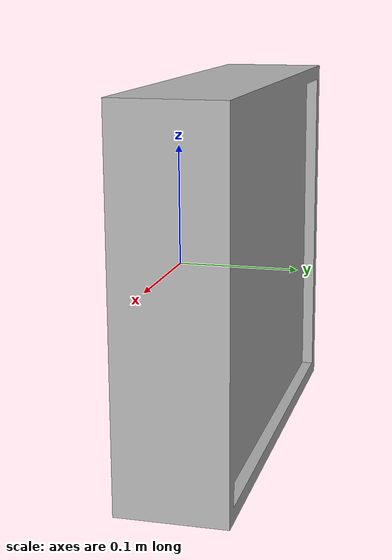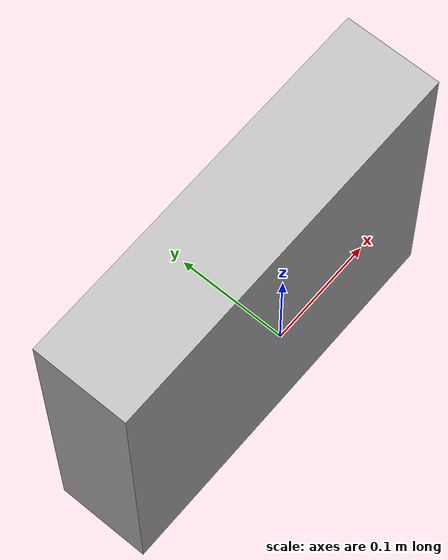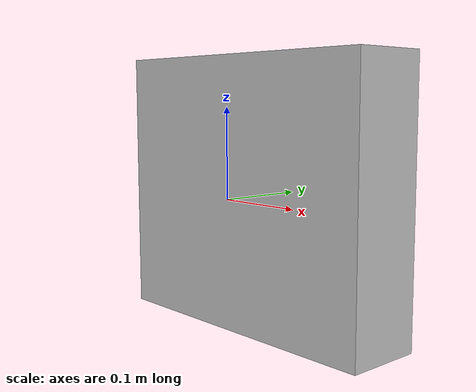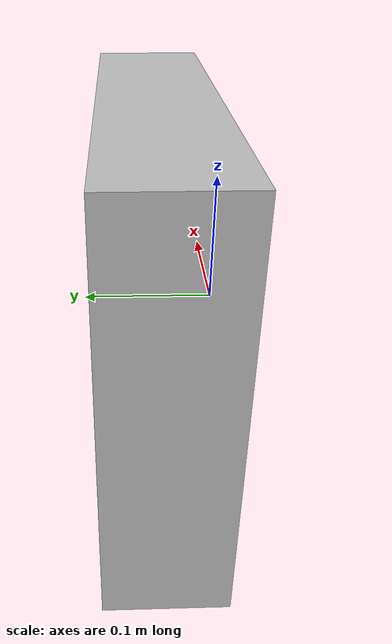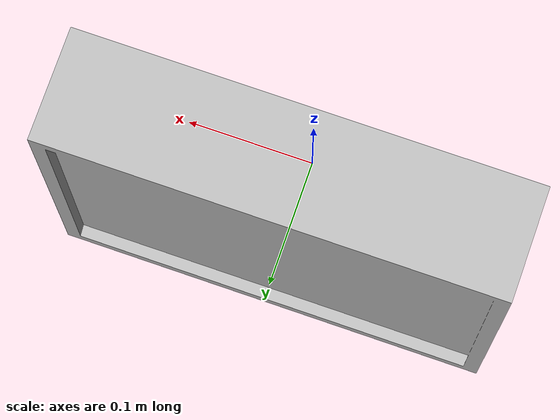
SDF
<?xml version="1.0" ?>
<sdf version="1.4">
  <model name="shelf3_box3_1a">
    <link name="body">
      <pose>0 0 0 0 0 0</pose>
      <inertial>
        <pose>   0.004597   0.042641   0.004950 0 0 0</pose>
        <mass>0.5</mass>
        <inertia>
          <ixx>0.01</ixx>
          <ixy>0</ixy>
          <ixz>0</ixz>
          <iyy>0.01</iyy>
          <iyz>0</iyz>
          <izz>0.01</izz>
        </inertia>
      </inertial>
      <collision name="collision">
        <geometry>
          <mesh>
            <uri>model://bookshelf/shelf3_items/box3_1a/box3_1a.dae</uri>
          </mesh>
        </geometry>
      </collision>
      <visual name="visual">
        <geometry>
          <mesh>
            <uri>model://bookshelf/shelf3_items/box3_1a/box3_1a.dae</uri>
          </mesh>
        </geometry>
      </visual>
    </link>
  </model>
</sdf>
